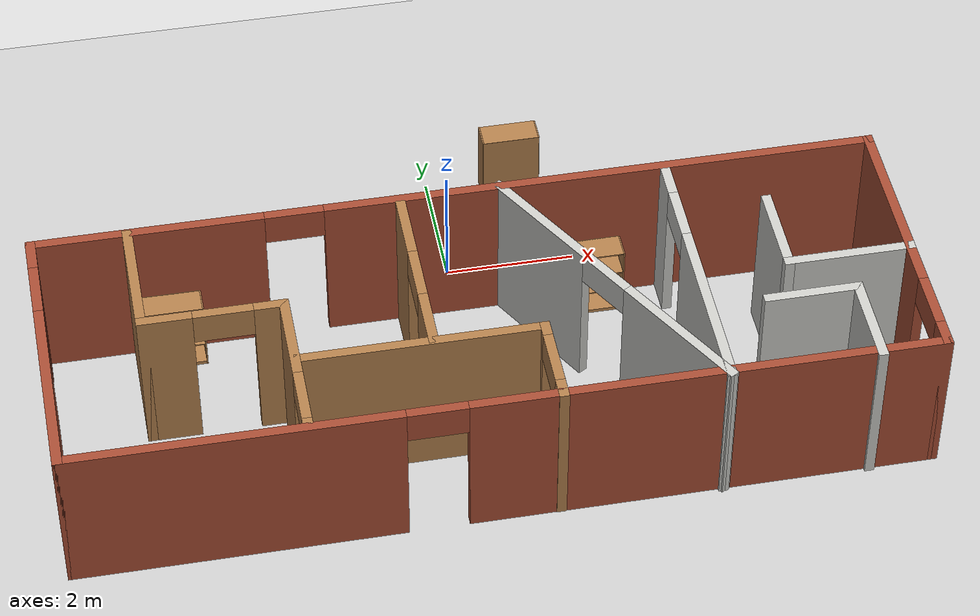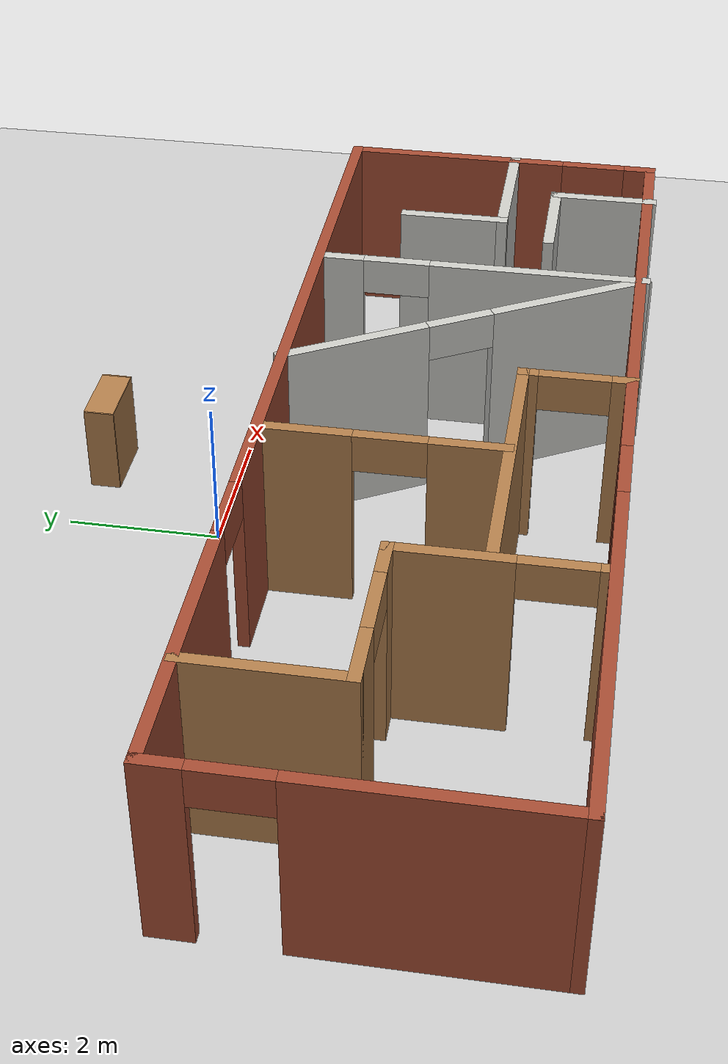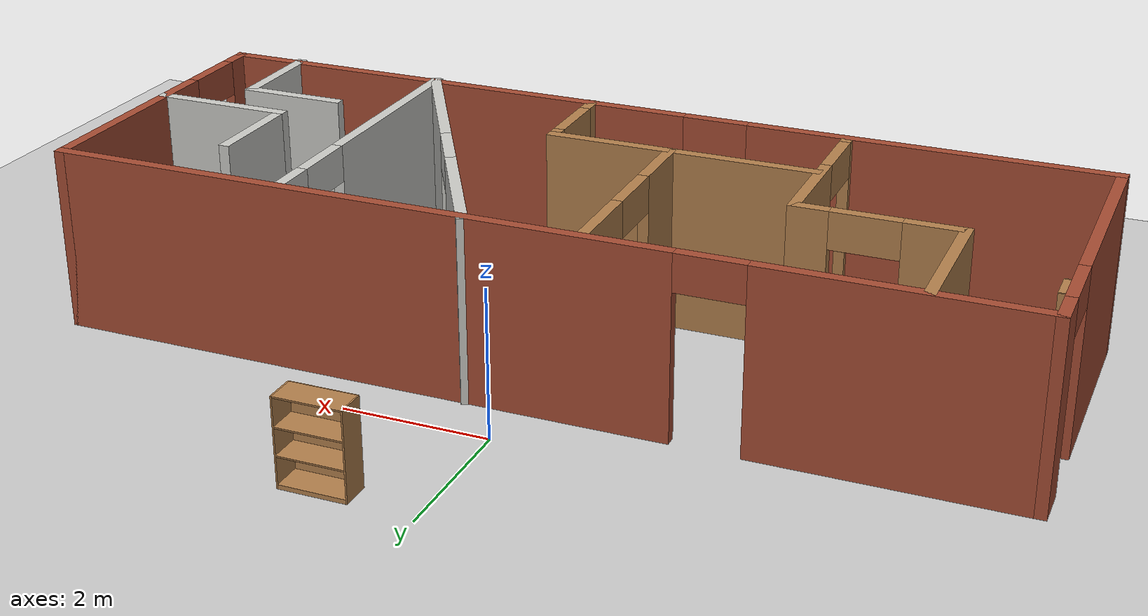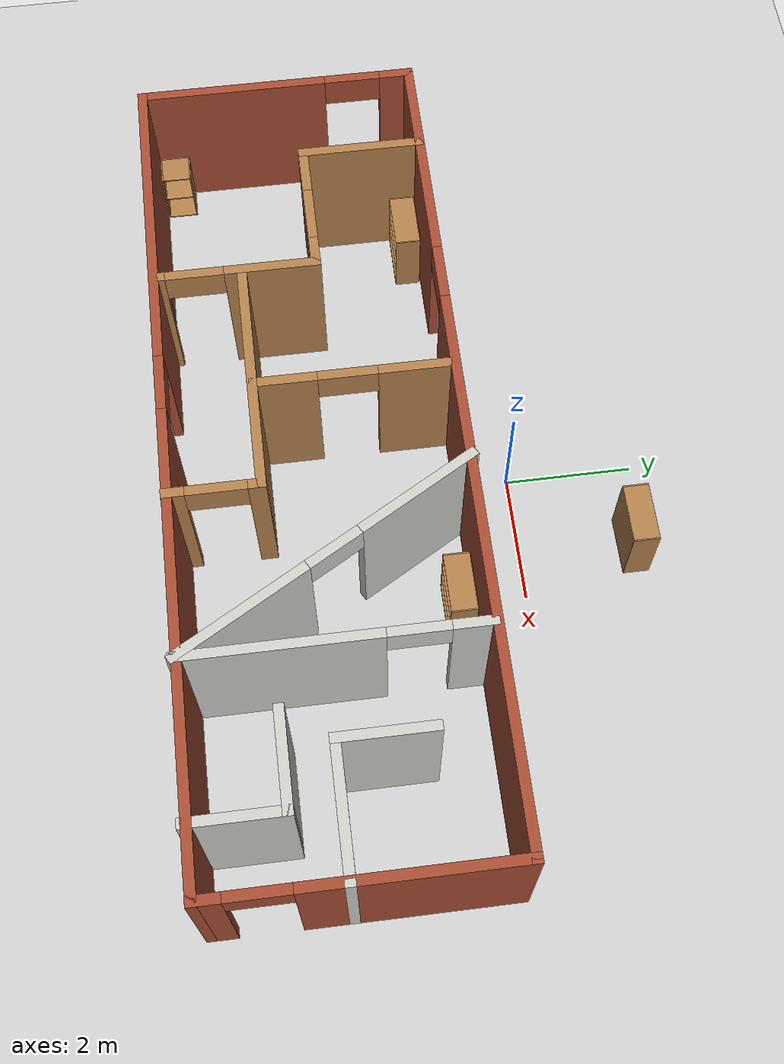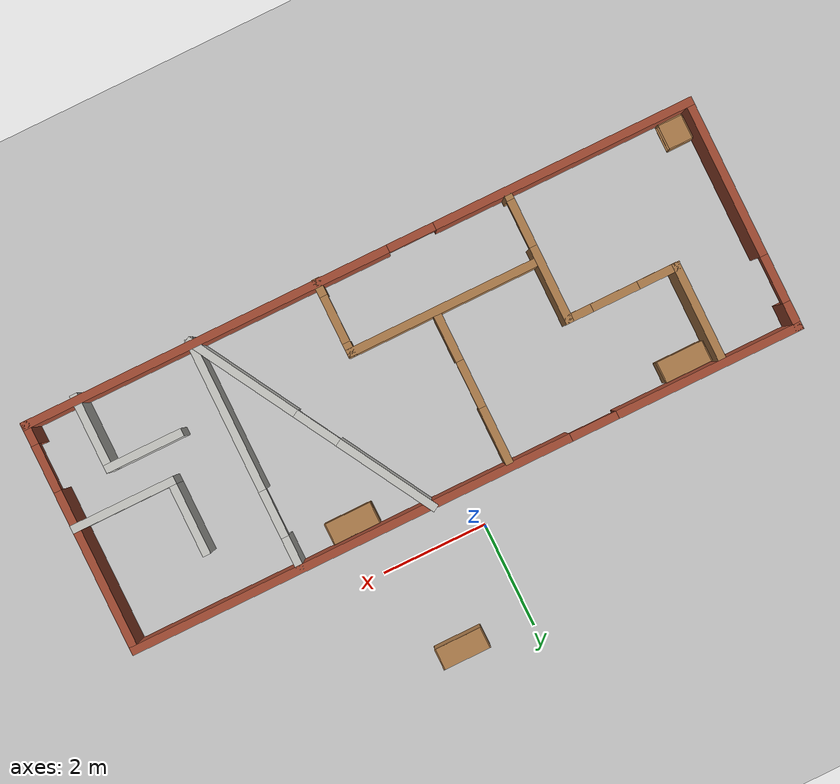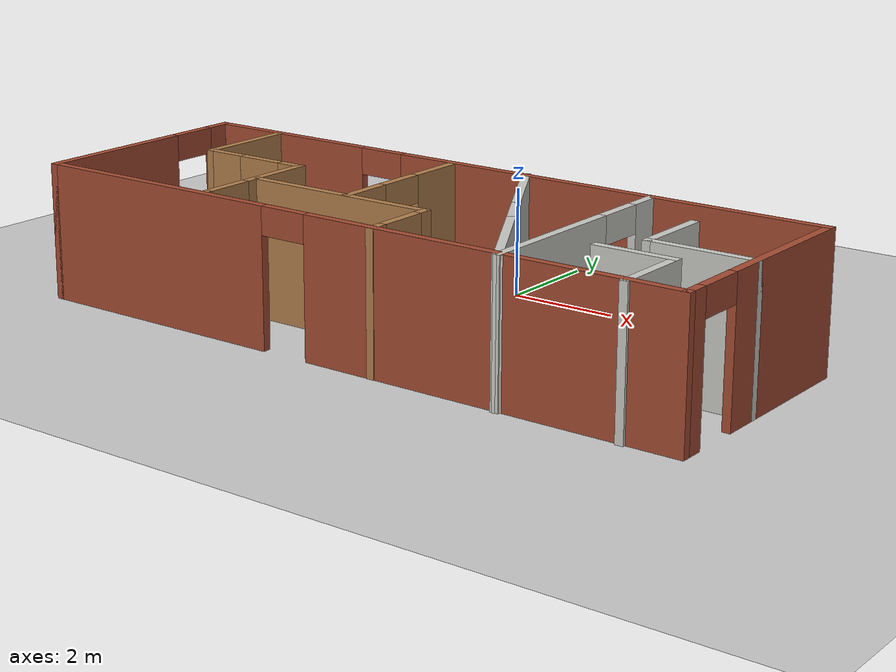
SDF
<sdf version="1.7">
 <world name="default">
  <model name="ground_plane">
   <static>1</static>
   <link name="link">
    <collision name="collision">
     <geometry><plane><normal>0 0 1</normal><size>100 100</size></plane></geometry>
     <surface><friction><ode><mu>100</mu><mu2>50</mu2></ode></friction></surface>
    </collision>
    <visual name="visual">
     <cast_shadows>0</cast_shadows>
     <geometry><plane><normal>0 0 1</normal><size>100 100</size></plane></geometry>
     <material>
      <script><uri>file://media/materials/scripts/gazebo.material</uri><name>Gazebo/Grey</name></script>
     </material>
    </visual>
   </link>
  </model>
  <model name="maze">
   <pose>0.010006 -2.63959 0 0 -0 0</pose>
   <link name="Wall_1">
    <pose>0 -2.49041 0 0 -0 0</pose>
    <visual name="Wall_1_Visual_0">
     <pose>-3.9975 0 1.25 0 -0 0</pose>
     <geometry><box><size>5.005 0.15 2.5</size></box></geometry>
     <material>
      <script><uri>file://media/materials/scripts/gazebo.material</uri><name>Gazebo/Bricks</name></script>
      <ambient>1 1 1 1</ambient>
     </material>
     <meta><layer>0</layer></meta>
    </visual>
    <collision name="Wall_1_Collision_0">
     <geometry><box><size>5.005 0.15 2.5</size></box></geometry>
     <pose>-3.9975 0 1.25 0 -0 0</pose>
    </collision>
    <visual name="Wall_1_Visual_1">
     <pose>2.9525 0 1.25 0 -0 0</pose>
     <geometry><box><size>7.095 0.15 2.5</size></box></geometry>
     <material>
      <script><uri>file://media/materials/scripts/gazebo.material</uri><name>Gazebo/Bricks</name></script>
      <ambient>1 1 1 1</ambient>
     </material>
     <meta><layer>0</layer></meta>
    </visual>
    <collision name="Wall_1_Collision_1">
     <geometry><box><size>7.095 0.15 2.5</size></box></geometry>
     <pose>2.9525 0 1.25 0 -0 0</pose>
    </collision>
    <visual name="Wall_1_Visual_2">
     <pose>-1.045 0 2.25 0 -0 0</pose>
     <geometry><box><size>0.9 0.15 0.5</size></box></geometry>
     <material>
      <script><uri>file://media/materials/scripts/gazebo.material</uri><name>Gazebo/Bricks</name></script>
      <ambient>1 1 1 1</ambient>
     </material>
     <meta><layer>0</layer></meta>
    </visual>
    <collision name="Wall_1_Collision_2">
     <geometry><box><size>0.9 0.15 0.5</size></box></geometry>
     <pose>-1.045 0 2.25 0 -0 0</pose>
    </collision>
   </link>
   <link name="Wall_10">
    <pose>-3.935 -0.010409 0 0 -0 0</pose>
    <visual name="Wall_10_Visual_0">
     <pose>-0.7125 0 1.25 0 -0 0</pose>
     <geometry><box><size>0.825 0.15 2.5</size></box></geometry>
     <material>
      <script><uri>file://media/materials/scripts/gazebo.material</uri><name>Gazebo/Wood</name></script>
      <ambient>1 1 1 1</ambient>
     </material>
     <meta><layer>0</layer></meta>
    </visual>
    <collision name="Wall_10_Collision_0">
     <geometry><box><size>0.825 0.15 2.5</size></box></geometry>
     <pose>-0.7125 0 1.25 0 -0 0</pose>
    </collision>
    <visual name="Wall_10_Visual_1">
     <pose>0.8625 0 1.25 0 -0 0</pose>
     <geometry><box><size>0.525 0.15 2.5</size></box></geometry>
     <material>
      <script><uri>file://media/materials/scripts/gazebo.material</uri><name>Gazebo/Wood</name></script>
      <ambient>1 1 1 1</ambient>
     </material>
     <meta><layer>0</layer></meta>
    </visual>
    <collision name="Wall_10_Collision_1">
     <geometry><box><size>0.525 0.15 2.5</size></box></geometry>
     <pose>0.8625 0 1.25 0 -0 0</pose>
    </collision>
    <visual name="Wall_10_Visual_2">
     <pose>0.15 0 2.25 0 -0 0</pose>
     <geometry><box><size>0.9 0.15 0.5</size></box></geometry>
     <material>
      <script><uri>file://media/materials/scripts/gazebo.material</uri><name>Gazebo/Wood</name></script>
      <ambient>1 1 1 1</ambient>
     </material>
     <meta><layer>0</layer></meta>
    </visual>
    <collision name="Wall_10_Collision_2">
     <geometry><box><size>0.9 0.15 0.5</size></box></geometry>
     <pose>0.15 0 2.25 0 -0 0</pose>
    </collision>
   </link>
   <link name="Wall_11">
    <pose>-2.885 -1.18541 0 0 -0 -1.5708</pose>
    <visual name="Wall_11_Visual_0">
     <pose>-0.5075 0 1.25 0 -0 0</pose>
     <geometry><box><size>1.485 0.15 2.5</size></box></geometry>
     <material>
      <script><uri>file://media/materials/scripts/gazebo.material</uri><name>Gazebo/Wood</name></script>
      <ambient>1 1 1 1</ambient>
     </material>
     <meta><layer>0</layer></meta>
    </visual>
    <collision name="Wall_11_Collision_0">
     <geometry><box><size>1.485 0.15 2.5</size></box></geometry>
     <pose>-0.5075 0 1.25 0 -0 0</pose>
    </collision>
    <visual name="Wall_11_Visual_1">
     <pose>1.1925 0 1.25 0 -0 0</pose>
     <geometry><box><size>0.115 0.15 2.5</size></box></geometry>
     <material>
      <script><uri>file://media/materials/scripts/gazebo.material</uri><name>Gazebo/Wood</name></script>
      <ambient>1 1 1 1</ambient>
     </material>
     <meta><layer>0</layer></meta>
    </visual>
    <collision name="Wall_11_Collision_1">
     <geometry><box><size>0.115 0.15 2.5</size></box></geometry>
     <pose>1.1925 0 1.25 0 -0 0</pose>
    </collision>
    <visual name="Wall_11_Visual_2">
     <pose>0.685 0 2.25 0 -0 0</pose>
     <geometry><box><size>0.9 0.15 0.5</size></box></geometry>
     <material>
      <script><uri>file://media/materials/scripts/gazebo.material</uri><name>Gazebo/Wood</name></script>
      <ambient>1 1 1 1</ambient>
     </material>
     <meta><layer>0</layer></meta>
    </visual>
    <collision name="Wall_11_Collision_2">
     <geometry><box><size>0.9 0.15 0.5</size></box></geometry>
     <pose>0.685 0 2.25 0 -0 0</pose>
    </collision>
   </link>
   <link name="Wall_16">
    <collision name="Wall_16_Collision">
     <geometry><box><size>3.75 0.15 2.5</size></box></geometry>
     <pose>0 0 1.25 0 -0 0</pose>
    </collision>
    <visual name="Wall_16_Visual">
     <pose>0 0 1.25 0 -0 0</pose>
     <geometry><box><size>3.75 0.15 2.5</size></box></geometry>
     <material>
      <script><uri>file://media/materials/scripts/gazebo.material</uri><name>Gazebo/Wood</name></script>
      <ambient>1 1 1 1</ambient>
     </material>
     <meta><layer>0</layer></meta>
    </visual>
    <pose>-1.025 -1.15041 0 0 -0 0</pose>
   </link>
   <link name="Wall_17">
    <pose>0.775 -1.82541 0 0 -0 -1.5708</pose>
    <visual name="Wall_17_Visual_0">
     <pose>-0.6175 0 1.25 0 -0 0</pose>
     <geometry><box><size>0.265 0.15 2.5</size></box></geometry>
     <material>
      <script><uri>file://media/materials/scripts/gazebo.material</uri><name>Gazebo/Wood</name></script>
      <ambient>1 1 1 1</ambient>
     </material>
     <meta><layer>0</layer></meta>
    </visual>
    <collision name="Wall_17_Collision_0">
     <geometry><box><size>0.265 0.15 2.5</size></box></geometry>
     <pose>-0.6175 0 1.25 0 -0 0</pose>
    </collision>
    <visual name="Wall_17_Visual_1">
     <pose>0.5825 0 1.25 0 -0 0</pose>
     <geometry><box><size>0.335 0.15 2.5</size></box></geometry>
     <material>
      <script><uri>file://media/materials/scripts/gazebo.material</uri><name>Gazebo/Wood</name></script>
      <ambient>1 1 1 1</ambient>
     </material>
     <meta><layer>0</layer></meta>
    </visual>
    <collision name="Wall_17_Collision_1">
     <geometry><box><size>0.335 0.15 2.5</size></box></geometry>
     <pose>0.5825 0 1.25 0 -0 0</pose>
    </collision>
    <visual name="Wall_17_Visual_2">
     <pose>-0.035 0 2.25 0 -0 0</pose>
     <geometry><box><size>0.9 0.15 0.5</size></box></geometry>
     <material>
      <script><uri>file://media/materials/scripts/gazebo.material</uri><name>Gazebo/Wood</name></script>
      <ambient>1 1 1 1</ambient>
     </material>
     <meta><layer>0</layer></meta>
    </visual>
    <collision name="Wall_17_Collision_2">
     <geometry><box><size>0.9 0.15 0.5</size></box></geometry>
     <pose>-0.035 0 2.25 0 -0 0</pose>
    </collision>
   </link>
   <link name="Wall_19">
    <pose>-0.865 0.304591 0 0 -0 1.5708</pose>
    <visual name="Wall_19_Visual_0">
     <pose>-0.9975 0 1.25 0 -0 0</pose>
     <geometry><box><size>1.005 0.15 2.5</size></box></geometry>
     <material>
      <script><uri>file://media/materials/scripts/gazebo.material</uri><name>Gazebo/Wood</name></script>
      <ambient>1 1 1 1</ambient>
     </material>
     <meta><layer>0</layer></meta>
    </visual>
    <collision name="Wall_19_Collision_0">
     <geometry><box><size>1.005 0.15 2.5</size></box></geometry>
     <pose>-0.9975 0 1.25 0 -0 0</pose>
    </collision>
    <visual name="Wall_19_Visual_1">
     <pose>0.9525 0 1.25 0 -0 0</pose>
     <geometry><box><size>1.095 0.15 2.5</size></box></geometry>
     <material>
      <script><uri>file://media/materials/scripts/gazebo.material</uri><name>Gazebo/Wood</name></script>
      <ambient>1 1 1 1</ambient>
     </material>
     <meta><layer>0</layer></meta>
    </visual>
    <collision name="Wall_19_Collision_1">
     <geometry><box><size>1.095 0.15 2.5</size></box></geometry>
     <pose>0.9525 0 1.25 0 -0 0</pose>
    </collision>
    <visual name="Wall_19_Visual_2">
     <pose>-0.045 0 2.25 0 -0 0</pose>
     <geometry><box><size>0.9 0.15 0.5</size></box></geometry>
     <material>
      <script><uri>file://media/materials/scripts/gazebo.material</uri><name>Gazebo/Wood</name></script>
      <ambient>1 1 1 1</ambient>
     </material>
     <meta><layer>0</layer></meta>
    </visual>
    <collision name="Wall_19_Collision_2">
     <geometry><box><size>0.9 0.15 0.5</size></box></geometry>
     <pose>-0.045 0 2.25 0 -0 0</pose>
    </collision>
   </link>
   <link name="Wall_21">
    <pose>1.94 -0.328774 0 0 -0 -1.0472</pose>
    <visual name="Wall_21_Visual_0">
     <pose>-1.595 0 1.25 0 -0 0</pose>
     <geometry><box><size>2.05999 0.15 2.5</size></box></geometry>
     <material>
      <script><uri>file://media/materials/scripts/gazebo.material</uri><name>Gazebo/CeilingTiled</name></script>
      <ambient>1 1 1 1</ambient>
     </material>
     <meta><layer>0</layer></meta>
    </visual>
    <collision name="Wall_21_Collision_0">
     <geometry><box><size>2.05999 0.15 2.5</size></box></geometry>
     <pose>-1.595 0 1.25 0 -0 0</pose>
    </collision>
    <visual name="Wall_21_Visual_1">
     <pose>1.48 0 1.25 0 -0 0</pose>
     <geometry><box><size>2.29001 0.15 2.5</size></box></geometry>
     <material>
      <script><uri>file://media/materials/scripts/gazebo.material</uri><name>Gazebo/CeilingTiled</name></script>
      <ambient>1 1 1 1</ambient>
     </material>
     <meta><layer>0</layer></meta>
    </visual>
    <collision name="Wall_21_Collision_1">
     <geometry><box><size>2.29001 0.15 2.5</size></box></geometry>
     <pose>1.48 0 1.25 0 -0 0</pose>
    </collision>
    <visual name="Wall_21_Visual_2">
     <pose>-0.115007 0 2.25 0 -0 0</pose>
     <geometry><box><size>0.9 0.15 0.5</size></box></geometry>
     <material>
      <script><uri>file://media/materials/scripts/gazebo.material</uri><name>Gazebo/CeilingTiled</name></script>
      <ambient>1 1 1 1</ambient>
     </material>
     <meta><layer>0</layer></meta>
    </visual>
    <collision name="Wall_21_Collision_2">
     <geometry><box><size>0.9 0.15 0.5</size></box></geometry>
     <pose>-0.115007 0 2.25 0 -0 0</pose>
    </collision>
   </link>
   <link name="Wall_22">
    <pose>3.215 -0.362139 0 0 -0 1.5708</pose>
    <visual name="Wall_22_Visual_0">
     <pose>-0.774135 0 1.25 0 -0 0</pose>
     <geometry><box><size>2.95173 0.15 2.5</size></box></geometry>
     <material>
      <script><uri>file://media/materials/scripts/gazebo.material</uri><name>Gazebo/CeilingTiled</name></script>
      <ambient>1 1 1 1</ambient>
     </material>
     <meta><layer>0</layer></meta>
    </visual>
    <collision name="Wall_22_Collision_0">
     <geometry><box><size>2.95173 0.15 2.5</size></box></geometry>
     <pose>-0.774135 0 1.25 0 -0 0</pose>
    </collision>
    <visual name="Wall_22_Visual_1">
     <pose>1.92586 0 1.25 0 -0 0</pose>
     <geometry><box><size>0.648271 0.15 2.5</size></box></geometry>
     <material>
      <script><uri>file://media/materials/scripts/gazebo.material</uri><name>Gazebo/CeilingTiled</name></script>
      <ambient>1 1 1 1</ambient>
     </material>
     <meta><layer>0</layer></meta>
    </visual>
    <collision name="Wall_22_Collision_1">
     <geometry><box><size>0.648271 0.15 2.5</size></box></geometry>
     <pose>1.92586 0 1.25 0 -0 0</pose>
    </collision>
    <visual name="Wall_22_Visual_2">
     <pose>1.15173 0 2.25 0 -0 0</pose>
     <geometry><box><size>0.9 0.15 0.5</size></box></geometry>
     <material>
      <script><uri>file://media/materials/scripts/gazebo.material</uri><name>Gazebo/CeilingTiled</name></script>
      <ambient>1 1 1 1</ambient>
     </material>
     <meta><layer>0</layer></meta>
    </visual>
    <collision name="Wall_22_Collision_2">
     <geometry><box><size>0.9 0.15 0.5</size></box></geometry>
     <pose>1.15173 0 2.25 0 -0 0</pose>
    </collision>
   </link>
   <link name="Wall_24">
    <collision name="Wall_24_Collision">
     <geometry><box><size>2 0.15 2.5</size></box></geometry>
     <pose>0 0 1.25 0 -0 0</pose>
    </collision>
    <visual name="Wall_24_Visual">
     <pose>0 0 1.25 0 -0 0</pose>
     <geometry><box><size>2 0.15 2.5</size></box></geometry>
     <material>
      <script><uri>file://media/materials/scripts/gazebo.material</uri><name>Gazebo/CeilingTiled</name></script>
      <ambient>1 1 1 1</ambient>
     </material>
     <meta><layer>0</layer></meta>
    </visual>
    <pose>5.5 -0.500409 0 0 -0 3.14159</pose>
   </link>
   <link name="Wall_25">
    <collision name="Wall_25_Collision">
     <geometry><box><size>1.5 0.15 2.5</size></box></geometry>
     <pose>0 0 1.25 0 -0 0</pose>
    </collision>
    <visual name="Wall_25_Visual">
     <pose>0 0 1.25 0 -0 0</pose>
     <geometry><box><size>1.5 0.15 2.5</size></box></geometry>
     <material>
      <script><uri>file://media/materials/scripts/gazebo.material</uri><name>Gazebo/CeilingTiled</name></script>
      <ambient>1 1 1 1</ambient>
     </material>
     <meta><layer>0</layer></meta>
    </visual>
    <pose>4.575 0.174591 0 0 -0 1.5708</pose>
   </link>
   <link name="Wall_27">
    <collision name="Wall_27_Collision">
     <geometry><box><size>1.5 0.15 2.5</size></box></geometry>
     <pose>0 0 1.25 0 -0 0</pose>
    </collision>
    <visual name="Wall_27_Visual">
     <pose>0 0 1.25 0 -0 0</pose>
     <geometry><box><size>1.5 0.15 2.5</size></box></geometry>
     <material>
      <script><uri>file://media/materials/scripts/gazebo.material</uri><name>Gazebo/CeilingTiled</name></script>
      <ambient>1 1 1 1</ambient>
     </material>
     <meta><layer>0</layer></meta>
    </visual>
    <pose>4.77 -1.19041 0 0 -0 0</pose>
   </link>
   <link name="Wall_28">
    <collision name="Wall_28_Collision">
     <geometry><box><size>1.5 0.15 2.5</size></box></geometry>
     <pose>0 0 1.25 0 -0 0</pose>
    </collision>
    <visual name="Wall_28_Visual">
     <pose>0 0 1.25 0 -0 0</pose>
     <geometry><box><size>1.5 0.15 2.5</size></box></geometry>
     <material>
      <script><uri>file://media/materials/scripts/gazebo.material</uri><name>Gazebo/CeilingTiled</name></script>
      <ambient>1 1 1 1</ambient>
     </material>
     <meta><layer>0</layer></meta>
    </visual>
    <pose>5.445 -1.86541 0 0 -0 -1.5708</pose>
   </link>
   <link name="Wall_5">
    <pose>-6.425 -0.315409 0 0 -0 1.5708</pose>
    <visual name="Wall_5_Visual_0">
     <pose>-0.7275 0 1.25 0 -0 0</pose>
     <geometry><box><size>3.045 0.15 2.5</size></box></geometry>
     <material>
      <script><uri>file://media/materials/scripts/gazebo.material</uri><name>Gazebo/Bricks</name></script>
      <ambient>1 1 1 1</ambient>
     </material>
     <meta><layer>0</layer></meta>
    </visual>
    <collision name="Wall_5_Collision_0">
     <geometry><box><size>3.045 0.15 2.5</size></box></geometry>
     <pose>-0.7275 0 1.25 0 -0 0</pose>
    </collision>
    <visual name="Wall_5_Visual_1">
     <pose>1.9725 0 1.25 0 -0 0</pose>
     <geometry><box><size>0.555 0.15 2.5</size></box></geometry>
     <material>
      <script><uri>file://media/materials/scripts/gazebo.material</uri><name>Gazebo/Bricks</name></script>
      <ambient>1 1 1 1</ambient>
     </material>
     <meta><layer>0</layer></meta>
    </visual>
    <collision name="Wall_5_Collision_1">
     <geometry><box><size>0.555 0.15 2.5</size></box></geometry>
     <pose>1.9725 0 1.25 0 -0 0</pose>
    </collision>
    <visual name="Wall_5_Visual_2">
     <pose>1.245 0 2.25 0 -0 0</pose>
     <geometry><box><size>0.9 0.15 0.5</size></box></geometry>
     <material>
      <script><uri>file://media/materials/scripts/gazebo.material</uri><name>Gazebo/Bricks</name></script>
      <ambient>1 1 1 1</ambient>
     </material>
     <meta><layer>0</layer></meta>
    </visual>
    <collision name="Wall_5_Collision_2">
     <geometry><box><size>0.9 0.15 0.5</size></box></geometry>
     <pose>1.245 0 2.25 0 -0 0</pose>
    </collision>
   </link>
   <link name="Wall_6">
    <pose>0 1.85959 0 0 -0 0</pose>
    <visual name="Wall_6_Visual_0">
     <pose>-4.7125 0 1.25 0 -0 0</pose>
     <geometry><box><size>3.575 0.15 2.5</size></box></geometry>
     <material>
      <script><uri>file://media/materials/scripts/gazebo.material</uri><name>Gazebo/Bricks</name></script>
      <ambient>1 1 1 1</ambient>
     </material>
     <meta><layer>0</layer></meta>
    </visual>
    <collision name="Wall_6_Collision_0">
     <geometry><box><size>3.575 0.15 2.5</size></box></geometry>
     <pose>-4.7125 0 1.25 0 -0 0</pose>
    </collision>
    <visual name="Wall_6_Visual_1">
     <pose>2.2375 0 1.25 0 -0 0</pose>
     <geometry><box><size>8.525 0.15 2.5</size></box></geometry>
     <material>
      <script><uri>file://media/materials/scripts/gazebo.material</uri><name>Gazebo/Bricks</name></script>
      <ambient>1 1 1 1</ambient>
     </material>
     <meta><layer>0</layer></meta>
    </visual>
    <collision name="Wall_6_Collision_1">
     <geometry><box><size>8.525 0.15 2.5</size></box></geometry>
     <pose>2.2375 0 1.25 0 -0 0</pose>
    </collision>
    <visual name="Wall_6_Visual_2">
     <pose>-2.475 0 2.25 0 -0 0</pose>
     <geometry><box><size>0.9 0.15 0.5</size></box></geometry>
     <material>
      <script><uri>file://media/materials/scripts/gazebo.material</uri><name>Gazebo/Bricks</name></script>
      <ambient>1 1 1 1</ambient>
     </material>
     <meta><layer>0</layer></meta>
    </visual>
    <collision name="Wall_6_Collision_2">
     <geometry><box><size>0.9 0.15 0.5</size></box></geometry>
     <pose>-2.475 0 2.25 0 -0 0</pose>
    </collision>
   </link>
   <link name="Wall_7">
    <pose>6.425 -0.315409 0 0 -0 -1.5708</pose>
    <visual name="Wall_7_Visual_0">
     <pose>-0.6775 0 1.25 0 -0 0</pose>
     <geometry><box><size>3.145 0.15 2.5</size></box></geometry>
     <material>
      <script><uri>file://media/materials/scripts/gazebo.material</uri><name>Gazebo/Bricks</name></script>
      <ambient>1 1 1 1</ambient>
     </material>
     <meta><layer>0</layer></meta>
    </visual>
    <collision name="Wall_7_Collision_0">
     <geometry><box><size>3.145 0.15 2.5</size></box></geometry>
     <pose>-0.6775 0 1.25 0 -0 0</pose>
    </collision>
    <visual name="Wall_7_Visual_1">
     <pose>2.0225 0 1.25 0 -0 0</pose>
     <geometry><box><size>0.455 0.15 2.5</size></box></geometry>
     <material>
      <script><uri>file://media/materials/scripts/gazebo.material</uri><name>Gazebo/Bricks</name></script>
      <ambient>1 1 1 1</ambient>
     </material>
     <meta><layer>0</layer></meta>
    </visual>
    <collision name="Wall_7_Collision_1">
     <geometry><box><size>0.455 0.15 2.5</size></box></geometry>
     <pose>2.0225 0 1.25 0 -0 0</pose>
    </collision>
    <visual name="Wall_7_Visual_2">
     <pose>1.345 0 2.25 0 -0 0</pose>
     <geometry><box><size>0.9 0.15 0.5</size></box></geometry>
     <material>
      <script><uri>file://media/materials/scripts/gazebo.material</uri><name>Gazebo/Bricks</name></script>
      <ambient>1 1 1 1</ambient>
     </material>
     <meta><layer>0</layer></meta>
    </visual>
    <collision name="Wall_7_Collision_2">
     <geometry><box><size>0.9 0.15 0.5</size></box></geometry>
     <pose>1.345 0 2.25 0 -0 0</pose>
    </collision>
   </link>
   <link name="Wall_9">
    <collision name="Wall_9_Collision">
     <geometry><box><size>2 0.15 2.5</size></box></geometry>
     <pose>0 0 1.25 0 -0 0</pose>
    </collision>
    <visual name="Wall_9_Visual">
     <pose>0 0 1.25 0 -0 0</pose>
     <geometry><box><size>2 0.15 2.5</size></box></geometry>
     <material>
      <script><uri>file://media/materials/scripts/gazebo.material</uri><name>Gazebo/Wood</name></script>
      <ambient>1 1 1 1</ambient>
     </material>
     <meta><layer>0</layer></meta>
    </visual>
    <pose>-4.985 0.914591 0 0 -0 -1.5708</pose>
   </link>
   <static>1</static>
  </model>
  <model name="cabinet">
   <static>1</static>
   <link name="cabinet_bottom_plate">
    <inertial>
     <pose>0 0 -1 0 -0 0</pose>
     <inertia><ixx>2.05</ixx><ixy>0</ixy><ixz>0</ixz><iyy>2.05</iyy><iyz>0</iyz><izz>2.05</izz></inertia>
     <mass>25</mass>
    </inertial>
    <collision name="cabinet_bottom_plate_geom">
     <pose>0 0 0.01 0 -0 0</pose>
     <geometry><box><size>0.45 0.45 0.02</size></box></geometry>
    </collision>
    <visual name="cabinet_bottom_plate_geom_visual">
     <pose>0 0 0.01 0 -0 0</pose>
     <geometry><box><size>0.45 0.45 0.02</size></box></geometry>
     <material>
      <script><uri>file://media/materials/scripts/gazebo.material</uri><name>Gazebo/Wood</name></script>
     </material>
    </visual>
    <collision name="cabinet_bottom_plate_geom_cabinet_back_plate">
     <pose>0.235 0 0.51 0 -0 0</pose>
     <geometry><box><size>0.02 0.45 1.02</size></box></geometry>
    </collision>
    <visual name="cabinet_bottom_plate_geom_cabinet_back_plate_visual">
     <pose>0.235 0 0.51 0 -0 0</pose>
     <geometry><box><size>0.02 0.45 1.02</size></box></geometry>
     <material>
      <script><uri>file://media/materials/scripts/gazebo.material</uri><name>Gazebo/Wood</name></script>
     </material>
    </visual>
    <collision name="cabinet_bottom_plate_geom_cabinet_left_plate">
     <pose>0 0.235 0.51 0 -0 0</pose>
     <geometry><box><size>0.45 0.02 1.02</size></box></geometry>
    </collision>
    <visual name="cabinet_bottom_plate_geom_cabinet_left_plate_visual">
     <pose>0 0.235 0.51 0 -0 0</pose>
     <geometry><box><size>0.45 0.02 1.02</size></box></geometry>
     <material>
      <script><uri>file://media/materials/scripts/gazebo.material</uri><name>Gazebo/Wood</name></script>
     </material>
    </visual>
    <collision name="cabinet_bottom_plate_geom_cabinet_middle_plate">
     <pose>0 0 0.51 0 -0 0</pose>
     <geometry><box><size>0.45 0.45 0.02</size></box></geometry>
    </collision>
    <visual name="cabinet_bottom_plate_geom_cabinet_middle_plate_visual">
     <pose>0 0 0.51 0 -0 0</pose>
     <geometry><box><size>0.45 0.45 0.02</size></box></geometry>
     <material>
      <script><uri>file://media/materials/scripts/gazebo.material</uri><name>Gazebo/Wood</name></script>
     </material>
    </visual>
    <collision name="cabinet_bottom_plate_geom_cabinet_right_plate">
     <pose>0 -0.235 0.51 0 -0 0</pose>
     <geometry><box><size>0.45 0.02 1.02</size></box></geometry>
    </collision>
    <visual name="cabinet_bottom_plate_geom_cabinet_right_plate_visual">
     <pose>0 -0.235 0.51 0 -0 0</pose>
     <geometry><box><size>0.45 0.02 1.02</size></box></geometry>
     <material>
      <script><uri>file://media/materials/scripts/gazebo.material</uri><name>Gazebo/Wood</name></script>
     </material>
    </visual>
    <collision name="cabinet_bottom_plate_geom_cabinet_top_plate">
     <pose>0 0 1.01 0 -0 0</pose>
     <geometry><box><size>0.45 0.45 0.02</size></box></geometry>
    </collision>
    <visual name="cabinet_bottom_plate_geom_cabinet_top_plate_visual">
     <pose>0 0 1.01 0 -0 0</pose>
     <geometry><box><size>0.45 0.45 0.02</size></box></geometry>
     <material>
      <script><uri>file://media/materials/scripts/gazebo.material</uri><name>Gazebo/Wood</name></script>
     </material>
    </visual>
   </link>
   <pose>-6.07449 -4.8016 -0 0 -0 3.14159</pose>
  </model>
  <model name="bookshelf">
   <static>1</static>
   <link name="link">
    <inertial><mass>1</mass></inertial>
    <collision name="back">
     <pose>0 0.005 0.6 0 -0 0</pose>
     <geometry><box><size>0.9 0.01 1.2</size></box></geometry>
    </collision>
    <visual name="visual1">
     <pose>0 0.005 0.6 0 -0 0</pose>
     <geometry><box><size>0.9 0.01 1.2</size></box></geometry>
     <material>
      <script><uri>file://media/materials/scripts/gazebo.material</uri><name>Gazebo/Wood</name></script>
     </material>
    </visual>
    <collision name="left_side">
     <pose>0.45 -0.195 0.6 0 -0 0</pose>
     <geometry><box><size>0.02 0.4 1.2</size></box></geometry>
    </collision>
    <visual name="visual2">
     <pose>0.45 -0.195 0.6 0 -0 0</pose>
     <geometry><box><size>0.02 0.4 1.2</size></box></geometry>
     <material>
      <script><uri>file://media/materials/scripts/gazebo.material</uri><name>Gazebo/Wood</name></script>
     </material>
    </visual>
    <collision name="right_side">
     <pose>-0.45 -0.195 0.6 0 -0 0</pose>
     <geometry><box><size>0.02 0.4 1.2</size></box></geometry>
    </collision>
    <visual name="visual3">
     <pose>-0.45 -0.195 0.6 0 -0 0</pose>
     <geometry><box><size>0.02 0.4 1.2</size></box></geometry>
     <material>
      <script><uri>file://media/materials/scripts/gazebo.material</uri><name>Gazebo/Wood</name></script>
     </material>
    </visual>
    <collision name="bottom">
     <pose>0 -0.195 0.03 0 -0 0</pose>
     <geometry><box><size>0.88 0.4 0.06</size></box></geometry>
    </collision>
    <visual name="visual4">
     <pose>0 -0.195 0.03 0 -0 0</pose>
     <geometry><box><size>0.88 0.4 0.06</size></box></geometry>
     <material>
      <script><uri>file://media/materials/scripts/gazebo.material</uri><name>Gazebo/Wood</name></script>
     </material>
    </visual>
    <collision name="top">
     <pose>0 -0.195 1.19 0 -0 0</pose>
     <geometry><box><size>0.88 0.4 0.02</size></box></geometry>
    </collision>
    <visual name="visual5">
     <pose>0 -0.195 1.19 0 -0 0</pose>
     <geometry><box><size>0.88 0.4 0.02</size></box></geometry>
     <material>
      <script><uri>file://media/materials/scripts/gazebo.material</uri><name>Gazebo/Wood</name></script>
     </material>
    </visual>
    <collision name="low_shelf">
     <pose>0 -0.195 0.43 0 -0 0</pose>
     <geometry><box><size>0.88 0.4 0.02</size></box></geometry>
    </collision>
    <visual name="visual6">
     <pose>0 -0.195 0.43 0 -0 0</pose>
     <geometry><box><size>0.88 0.4 0.02</size></box></geometry>
     <material>
      <script><uri>file://media/materials/scripts/gazebo.material</uri><name>Gazebo/Wood</name></script>
     </material>
    </visual>
    <collision name="high_shelf">
     <pose>0 -0.195 0.8 0 -0 0</pose>
     <geometry><box><size>0.88 0.4 0.02</size></box></geometry>
    </collision>
    <visual name="visual7">
     <pose>0 -0.195 0.8 0 -0 0</pose>
     <geometry><box><size>0.88 0.4 0.02</size></box></geometry>
     <material>
      <script><uri>file://media/materials/scripts/gazebo.material</uri><name>Gazebo/Wood</name></script>
     </material>
    </visual>
   </link>
   <pose>-4.42673 -0.884151 0 0 -0 0</pose>
  </model>
  <model name="bookshelf_0">
   <static>1</static>
   <link name="link">
    <inertial><mass>1</mass></inertial>
    <collision name="back">
     <pose>0 0.005 0.6 0 -0 0</pose>
     <geometry><box><size>0.9 0.01 1.2</size></box></geometry>
    </collision>
    <visual name="visual1">
     <pose>0 0.005 0.6 0 -0 0</pose>
     <geometry><box><size>0.9 0.01 1.2</size></box></geometry>
     <material>
      <script><uri>file://media/materials/scripts/gazebo.material</uri><name>Gazebo/Wood</name></script>
     </material>
    </visual>
    <collision name="left_side">
     <pose>0.45 -0.195 0.6 0 -0 0</pose>
     <geometry><box><size>0.02 0.4 1.2</size></box></geometry>
    </collision>
    <visual name="visual2">
     <pose>0.45 -0.195 0.6 0 -0 0</pose>
     <geometry><box><size>0.02 0.4 1.2</size></box></geometry>
     <material>
      <script><uri>file://media/materials/scripts/gazebo.material</uri><name>Gazebo/Wood</name></script>
     </material>
    </visual>
    <collision name="right_side">
     <pose>-0.45 -0.195 0.6 0 -0 0</pose>
     <geometry><box><size>0.02 0.4 1.2</size></box></geometry>
    </collision>
    <visual name="visual3">
     <pose>-0.45 -0.195 0.6 0 -0 0</pose>
     <geometry><box><size>0.02 0.4 1.2</size></box></geometry>
     <material>
      <script><uri>file://media/materials/scripts/gazebo.material</uri><name>Gazebo/Wood</name></script>
     </material>
    </visual>
    <collision name="bottom">
     <pose>0 -0.195 0.03 0 -0 0</pose>
     <geometry><box><size>0.88 0.4 0.06</size></box></geometry>
    </collision>
    <visual name="visual4">
     <pose>0 -0.195 0.03 0 -0 0</pose>
     <geometry><box><size>0.88 0.4 0.06</size></box></geometry>
     <material>
      <script><uri>file://media/materials/scripts/gazebo.material</uri><name>Gazebo/Wood</name></script>
     </material>
    </visual>
    <collision name="top">
     <pose>0 -0.195 1.19 0 -0 0</pose>
     <geometry><box><size>0.88 0.4 0.02</size></box></geometry>
    </collision>
    <visual name="visual5">
     <pose>0 -0.195 1.19 0 -0 0</pose>
     <geometry><box><size>0.88 0.4 0.02</size></box></geometry>
     <material>
      <script><uri>file://media/materials/scripts/gazebo.material</uri><name>Gazebo/Wood</name></script>
     </material>
    </visual>
    <collision name="low_shelf">
     <pose>0 -0.195 0.43 0 -0 0</pose>
     <geometry><box><size>0.88 0.4 0.02</size></box></geometry>
    </collision>
    <visual name="visual6">
     <pose>0 -0.195 0.43 0 -0 0</pose>
     <geometry><box><size>0.88 0.4 0.02</size></box></geometry>
     <material>
      <script><uri>file://media/materials/scripts/gazebo.material</uri><name>Gazebo/Wood</name></script>
     </material>
    </visual>
    <collision name="high_shelf">
     <pose>0 -0.195 0.8 0 -0 0</pose>
     <geometry><box><size>0.88 0.4 0.02</size></box></geometry>
    </collision>
    <visual name="visual7">
     <pose>0 -0.195 0.8 0 -0 0</pose>
     <geometry><box><size>0.88 0.4 0.02</size></box></geometry>
     <material>
      <script><uri>file://media/materials/scripts/gazebo.material</uri><name>Gazebo/Wood</name></script>
     </material>
    </visual>
   </link>
   <pose>2.09368 -0.881671 0 0 -0 0</pose>
  </model>
  <model name="bookshelf_2">
   <static>1</static>
   <link name="link">
    <inertial><mass>1</mass></inertial>
    <collision name="back">
     <pose>0 0.005 0.6 0 -0 0</pose>
     <geometry><box><size>0.9 0.01 1.2</size></box></geometry>
    </collision>
    <visual name="visual1">
     <pose>0 0.005 0.6 0 -0 0</pose>
     <geometry><box><size>0.9 0.01 1.2</size></box></geometry>
     <material>
      <script><uri>file://media/materials/scripts/gazebo.material</uri><name>Gazebo/Wood</name></script>
     </material>
    </visual>
    <collision name="left_side">
     <pose>0.45 -0.195 0.6 0 -0 0</pose>
     <geometry><box><size>0.02 0.4 1.2</size></box></geometry>
    </collision>
    <visual name="visual2">
     <pose>0.45 -0.195 0.6 0 -0 0</pose>
     <geometry><box><size>0.02 0.4 1.2</size></box></geometry>
     <material>
      <script><uri>file://media/materials/scripts/gazebo.material</uri><name>Gazebo/Wood</name></script>
     </material>
    </visual>
    <collision name="right_side">
     <pose>-0.45 -0.195 0.6 0 -0 0</pose>
     <geometry><box><size>0.02 0.4 1.2</size></box></geometry>
    </collision>
    <visual name="visual3">
     <pose>-0.45 -0.195 0.6 0 -0 0</pose>
     <geometry><box><size>0.02 0.4 1.2</size></box></geometry>
     <material>
      <script><uri>file://media/materials/scripts/gazebo.material</uri><name>Gazebo/Wood</name></script>
     </material>
    </visual>
    <collision name="bottom">
     <pose>0 -0.195 0.03 0 -0 0</pose>
     <geometry><box><size>0.88 0.4 0.06</size></box></geometry>
    </collision>
    <visual name="visual4">
     <pose>0 -0.195 0.03 0 -0 0</pose>
     <geometry><box><size>0.88 0.4 0.06</size></box></geometry>
     <material>
      <script><uri>file://media/materials/scripts/gazebo.material</uri><name>Gazebo/Wood</name></script>
     </material>
    </visual>
    <collision name="top">
     <pose>0 -0.195 1.19 0 -0 0</pose>
     <geometry><box><size>0.88 0.4 0.02</size></box></geometry>
    </collision>
    <visual name="visual5">
     <pose>0 -0.195 1.19 0 -0 0</pose>
     <geometry><box><size>0.88 0.4 0.02</size></box></geometry>
     <material>
      <script><uri>file://media/materials/scripts/gazebo.material</uri><name>Gazebo/Wood</name></script>
     </material>
    </visual>
    <collision name="low_shelf">
     <pose>0 -0.195 0.43 0 -0 0</pose>
     <geometry><box><size>0.88 0.4 0.02</size></box></geometry>
    </collision>
    <visual name="visual6">
     <pose>0 -0.195 0.43 0 -0 0</pose>
     <geometry><box><size>0.88 0.4 0.02</size></box></geometry>
     <material>
      <script><uri>file://media/materials/scripts/gazebo.material</uri><name>Gazebo/Wood</name></script>
     </material>
    </visual>
    <collision name="high_shelf">
     <pose>0 -0.195 0.8 0 -0 0</pose>
     <geometry><box><size>0.88 0.4 0.02</size></box></geometry>
    </collision>
    <visual name="visual7">
     <pose>0 -0.195 0.8 0 -0 0</pose>
     <geometry><box><size>0.88 0.4 0.02</size></box></geometry>
     <material>
      <script><uri>file://media/materials/scripts/gazebo.material</uri><name>Gazebo/Wood</name></script>
     </material>
    </visual>
   </link>
   <pose>1.3119 1.56872 0 0 -0 3.14159</pose>
  </model>
 </world>
</sdf>
